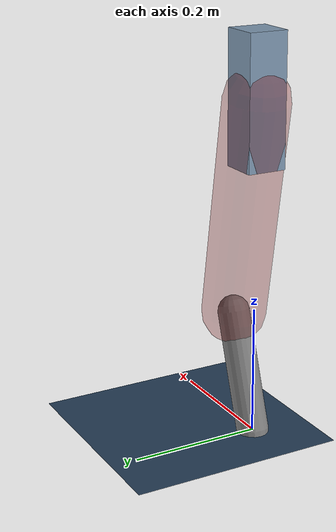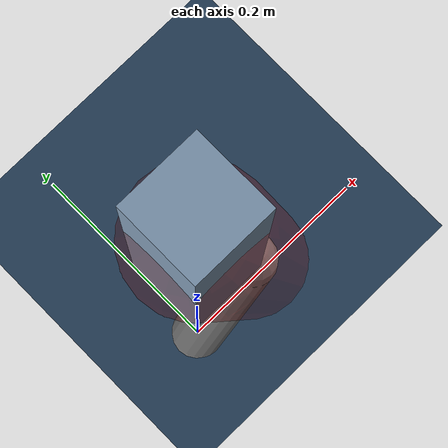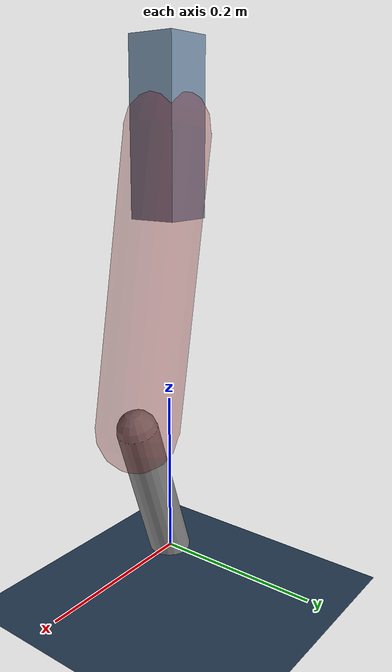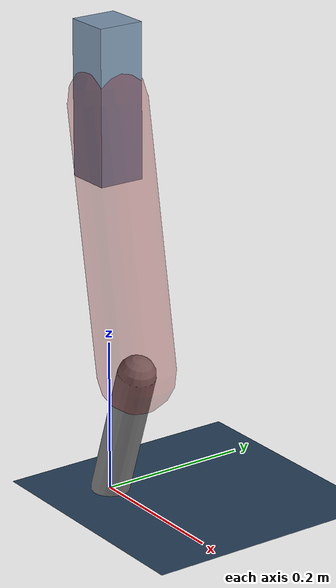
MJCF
<mujoco model="Hopper2D">
	<compiler inertiafromgeom="true" angle="radian" />
	<option timestep="0.001" integrator="implicit" cone="elliptic" solver="Newton" tolerance="1e-10" />

	<default>
		<geom contype="1" conaffinity="1" condim="3" friction="2 0.005 0.0001" solref="0.005 1" />
		<joint limited="true" damping="0.1" />
	</default>

	<asset>
		<texture name="skybox" type="skybox" builtin="gradient" rgb1=".4 .6 .8" rgb2="0 0 0" width="800" height="800" />
		<texture name="grid" type="2d" builtin="checker" rgb1=".1 .2 .3" rgb2=".2 .3 .4" width="300" height="300" mark="edge" markrgb=".2 .3 .4" />
		<material name="ground" texture="grid" texrepeat="1 1" texuniform="true" reflectance="0.1" />
		<material name="leg" rgba="0.5 0.6 0.7 1" />
	</asset>

	<worldbody>

		<geom name="floor" type="plane" size="5 5 0.25" material="ground" />

		<light directional="false" diffuse="0.8 0.8 0.8" specular="0.3 0.3 0.3" pos="0 0 2" dir="0 0 -1" />
		<light mode="targetbodycom" target="base" directional="false" diffuse="0.8 0.8 0.8" specular="0.3 0.3 0.3" pos="0 0 2" dir="0 0 -1" />

		<camera name="fixed" pos="0 -2 1" xyaxes="1 0 0 0 0 1" />
		<camera name="tracking" mode="trackcom" pos="0 -3 1" />

		<body name="root" pos="0 0 0.5203415266689346">
			<joint name="slide_x" type="slide" axis="1 0 0" range="-100 100" />
			<joint name="slide_z" type="slide" axis="0 0 1" range="0 10" />

			<body name="base" pos="0 0 0">
				<geom name="torso" type="box" size="0.03 0.03 0.1" mass="2.335" material="leg" />

				<body name="link1" pos="0 0 0" euler="0 1.3968956977277758 0">
					<joint type="hinge" axis="0 -1 0" pos="0 0 0" name="hinge1" limited="true" range="-3.14 3.14" stiffness="0" damping="0.1" />
					<geom name="thigh" type="capsule" fromto="0 0 0 0.34813455005133037 0 0" size="0.05" rgba="0.5 0 0 0.3" mass="1.1214767401437251" />

					<body name="link2" pos="0.34813455005133037 0 0" euler="0 0.5011364401126294 0">
						<joint type="hinge" axis="0 -1 0" pos="0 0 0" name="hinge2" limited="true" range="-3.14 3.14" stiffness="0" damping="0.1" />
						<geom name="shank" type="capsule" fromto="0 0 0 0.1874023784169775 0 0" size="0.025" mass="0.390221902733582" />

					</body>
				</body>
			</body>
		</body>
	</worldbody>

	<actuator>
		<motor name="torque1" joint="hinge1" ctrlrange="-18.9676982827592 18.9676982827592" ctrllimited="true" gear="1" />
		<motor name="torque2" joint="hinge2" ctrlrange="-86.28730166871739 86.28730166871739" ctrllimited="true" gear="1" />
	</actuator>
</mujoco>
